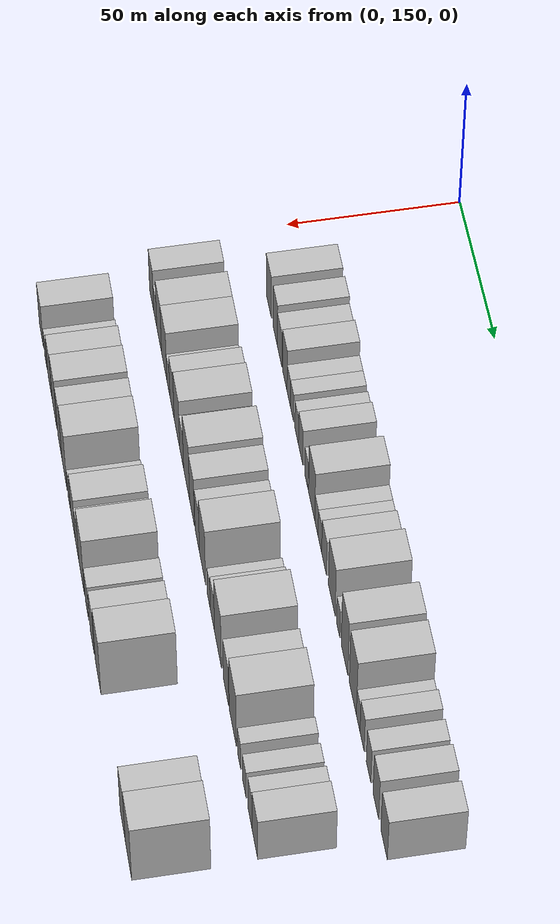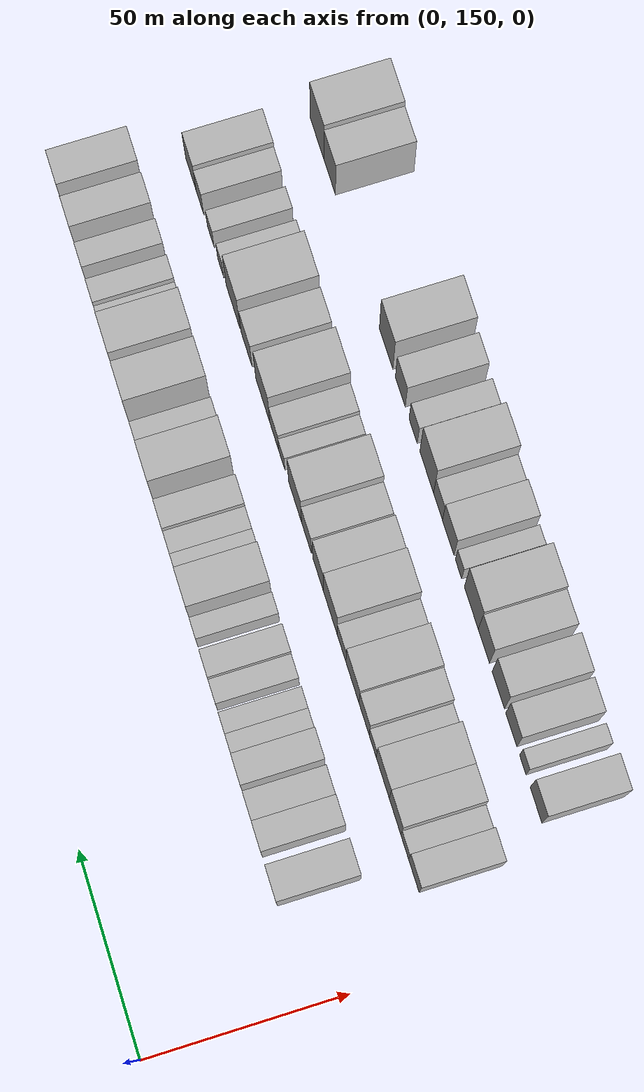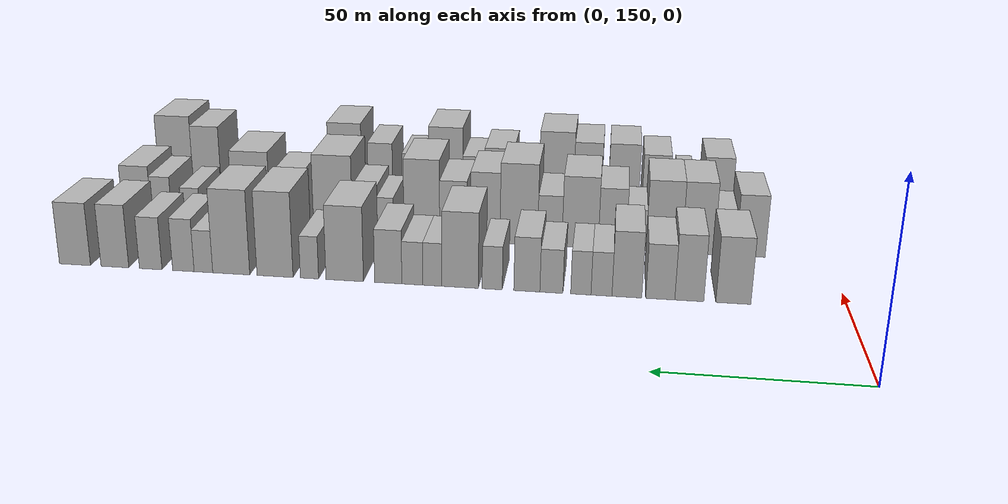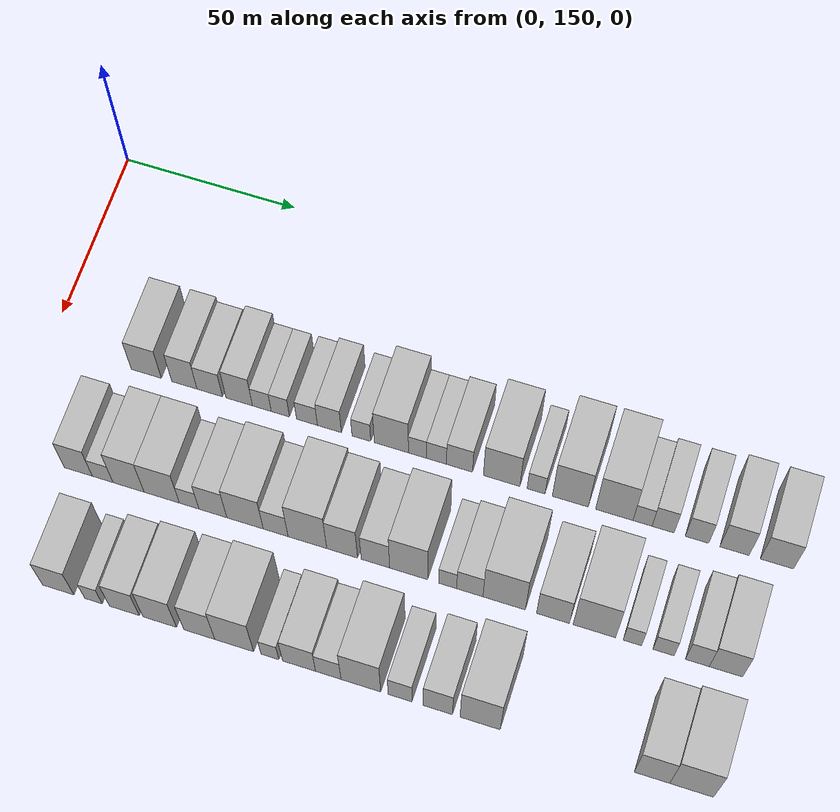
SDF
<sdf version="1.6">
 <world name="default">
  <model name="building_61">
   <static>1</static>
   <pose>50.0000 178.3178 0 0.000000 0.000000 0.000000</pose>
   <link name="link">
    <pose>0 0 9.00 0 0 0</pose>
    <collision name="collision"><geometry><box><size>20.0000 8.6861 18.0000</size></box></geometry></collision>
    <visual name="visual">
     <cast_shadows>0</cast_shadows>
     <geometry><box><size>20.0000 8.6861 18.0000</size></box></geometry>
     <material>
      <script>
       <uri>model://HANNAS_wall/materials/scripts</uri>
       <uri>model://HANNAS_wall/materials/textures</uri>
       <name>vrc/HANNAS_wall</name>
      </script>
     </material>
    </visual>
   </link>
  </model>
  <model name="building_62">
   <static>1</static>
   <pose>50.0000 189.3022 0 0.000000 0.000000 0.000000</pose>
   <link name="link">
    <pose>0 0 9.00 0 0 0</pose>
    <collision name="collision"><geometry><box><size>20.0000 7.2827 18.0000</size></box></geometry></collision>
    <visual name="visual">
     <cast_shadows>0</cast_shadows>
     <geometry><box><size>20.0000 7.2827 18.0000</size></box></geometry>
     <material>
      <script>
       <uri>model://HANNAS_wall/materials/scripts</uri>
       <uri>model://HANNAS_wall/materials/textures</uri>
       <name>vrc/HANNAS_wall</name>
      </script>
     </material>
    </visual>
   </link>
  </model>
  <model name="building_63">
   <static>1</static>
   <pose>50.0000 196.6041 0 0.000000 0.000000 0.000000</pose>
   <link name="link">
    <pose>0 0 7.50 0 0 0</pose>
    <collision name="collision"><geometry><box><size>20.0000 7.3212 15.0000</size></box></geometry></collision>
    <visual name="visual">
     <cast_shadows>0</cast_shadows>
     <geometry><box><size>20.0000 7.3212 15.0000</size></box></geometry>
     <material>
      <script>
       <uri>model://HANNAS_wall/materials/scripts</uri>
       <uri>model://HANNAS_wall/materials/textures</uri>
       <name>vrc/HANNAS_wall</name>
      </script>
     </material>
    </visual>
   </link>
  </model>
  <model name="building_64">
   <static>1</static>
   <pose>50.0000 205.0572 0 0.000000 0.000000 0.000000</pose>
   <link name="link">
    <pose>0 0 9.00 0 0 0</pose>
    <collision name="collision"><geometry><box><size>20.0000 7.5849 18.0000</size></box></geometry></collision>
    <visual name="visual">
     <cast_shadows>0</cast_shadows>
     <geometry><box><size>20.0000 7.5849 18.0000</size></box></geometry>
     <material>
      <script>
       <uri>model://HANNAS_wall/materials/scripts</uri>
       <uri>model://HANNAS_wall/materials/textures</uri>
       <name>vrc/HANNAS_wall</name>
      </script>
     </material>
    </visual>
   </link>
  </model>
  <model name="building_65">
   <static>1</static>
   <pose>50.0000 211.5247 0 0.000000 0.000000 0.000000</pose>
   <link name="link">
    <pose>0 0 6.00 0 0 0</pose>
    <collision name="collision"><geometry><box><size>20.0000 5.3502 12.0000</size></box></geometry></collision>
    <visual name="visual">
     <cast_shadows>0</cast_shadows>
     <geometry><box><size>20.0000 5.3502 12.0000</size></box></geometry>
     <material>
      <script>
       <uri>model://HANNAS_wall/materials/scripts</uri>
       <uri>model://HANNAS_wall/materials/textures</uri>
       <name>vrc/HANNAS_wall</name>
      </script>
     </material>
    </visual>
   </link>
  </model>
  <model name="building_66">
   <static>1</static>
   <pose>50.0000 216.8057 0 0.000000 0.000000 0.000000</pose>
   <link name="link">
    <pose>0 0 6.00 0 0 0</pose>
    <collision name="collision"><geometry><box><size>20.0000 5.2118 12.0000</size></box></geometry></collision>
    <visual name="visual">
     <cast_shadows>0</cast_shadows>
     <geometry><box><size>20.0000 5.2118 12.0000</size></box></geometry>
     <material>
      <script>
       <uri>model://HANNAS_wall/materials/scripts</uri>
       <uri>model://HANNAS_wall/materials/textures</uri>
       <name>vrc/HANNAS_wall</name>
      </script>
     </material>
    </visual>
   </link>
  </model>
  <model name="building_67">
   <static>1</static>
   <pose>50.0000 224.3799 0 0.000000 0.000000 0.000000</pose>
   <link name="link">
    <pose>0 0 6.00 0 0 0</pose>
    <collision name="collision"><geometry><box><size>20.0000 5.9366 12.0000</size></box></geometry></collision>
    <visual name="visual">
     <cast_shadows>0</cast_shadows>
     <geometry><box><size>20.0000 5.9366 12.0000</size></box></geometry>
     <material>
      <script>
       <uri>model://HANNAS_wall/materials/scripts</uri>
       <uri>model://HANNAS_wall/materials/textures</uri>
       <name>vrc/HANNAS_wall</name>
      </script>
     </material>
    </visual>
   </link>
  </model>
  <model name="building_68">
   <static>1</static>
   <pose>50.0000 230.7400 0 0.000000 0.000000 0.000000</pose>
   <link name="link">
    <pose>0 0 7.50 0 0 0</pose>
    <collision name="collision"><geometry><box><size>20.0000 6.7836 15.0000</size></box></geometry></collision>
    <visual name="visual">
     <cast_shadows>0</cast_shadows>
     <geometry><box><size>20.0000 6.7836 15.0000</size></box></geometry>
     <material>
      <script>
       <uri>model://HANNAS_wall/materials/scripts</uri>
       <uri>model://HANNAS_wall/materials/textures</uri>
       <name>vrc/HANNAS_wall</name>
      </script>
     </material>
    </visual>
   </link>
  </model>
  <model name="building_69">
   <static>1</static>
   <pose>50.0000 239.7752 0 0.000000 0.000000 0.000000</pose>
   <link name="link">
    <pose>0 0 6.00 0 0 0</pose>
    <collision name="collision"><geometry><box><size>20.0000 5.2867 12.0000</size></box></geometry></collision>
    <visual name="visual">
     <cast_shadows>0</cast_shadows>
     <geometry><box><size>20.0000 5.2867 12.0000</size></box></geometry>
     <material>
      <script>
       <uri>model://HANNAS_wall/materials/scripts</uri>
       <uri>model://HANNAS_wall/materials/textures</uri>
       <name>vrc/HANNAS_wall</name>
      </script>
     </material>
    </visual>
   </link>
  </model>
  <model name="building_70">
   <static>1</static>
   <pose>50.0000 248.2243 0 0.000000 0.000000 0.000000</pose>
   <link name="link">
    <pose>0 0 10.50 0 0 0</pose>
    <collision name="collision"><geometry><box><size>20.0000 9.6114 21.0000</size></box></geometry></collision>
    <visual name="visual">
     <cast_shadows>0</cast_shadows>
     <geometry><box><size>20.0000 9.6114 21.0000</size></box></geometry>
     <material>
      <script>
       <uri>model://HANNAS_wall/materials/scripts</uri>
       <uri>model://HANNAS_wall/materials/textures</uri>
       <name>vrc/HANNAS_wall</name>
      </script>
     </material>
    </visual>
   </link>
  </model>
  <model name="building_71">
   <static>1</static>
   <pose>50.0000 255.5449 0 0.000000 0.000000 0.000000</pose>
   <link name="link">
    <pose>0 0 6.00 0 0 0</pose>
    <collision name="collision"><geometry><box><size>20.0000 5.0299 12.0000</size></box></geometry></collision>
    <visual name="visual">
     <cast_shadows>0</cast_shadows>
     <geometry><box><size>20.0000 5.0299 12.0000</size></box></geometry>
     <material>
      <script>
       <uri>model://HANNAS_wall/materials/scripts</uri>
       <uri>model://HANNAS_wall/materials/textures</uri>
       <name>vrc/HANNAS_wall</name>
      </script>
     </material>
    </visual>
   </link>
  </model>
  <model name="building_72">
   <static>1</static>
   <pose>50.0000 260.8522 0 0.000000 0.000000 0.000000</pose>
   <link name="link">
    <pose>0 0 6.00 0 0 0</pose>
    <collision name="collision"><geometry><box><size>20.0000 5.5846 12.0000</size></box></geometry></collision>
    <visual name="visual">
     <cast_shadows>0</cast_shadows>
     <geometry><box><size>20.0000 5.5846 12.0000</size></box></geometry>
     <material>
      <script>
       <uri>model://HANNAS_wall/materials/scripts</uri>
       <uri>model://HANNAS_wall/materials/textures</uri>
       <name>vrc/HANNAS_wall</name>
      </script>
     </material>
    </visual>
   </link>
  </model>
  <model name="building_73">
   <static>1</static>
   <pose>50.0000 267.2864 0 0.000000 0.000000 0.000000</pose>
   <link name="link">
    <pose>0 0 7.50 0 0 0</pose>
    <collision name="collision"><geometry><box><size>20.0000 7.2839 15.0000</size></box></geometry></collision>
    <visual name="visual">
     <cast_shadows>0</cast_shadows>
     <geometry><box><size>20.0000 7.2839 15.0000</size></box></geometry>
     <material>
      <script>
       <uri>model://HANNAS_wall/materials/scripts</uri>
       <uri>model://HANNAS_wall/materials/textures</uri>
       <name>vrc/HANNAS_wall</name>
      </script>
     </material>
    </visual>
   </link>
  </model>
  <model name="building_74">
   <static>1</static>
   <pose>50.0000 278.9940 0 0.000000 0.000000 0.000000</pose>
   <link name="link">
    <pose>0 0 10.50 0 0 0</pose>
    <collision name="collision"><geometry><box><size>20.0000 10.1313 21.0000</size></box></geometry></collision>
    <visual name="visual">
     <cast_shadows>0</cast_shadows>
     <geometry><box><size>20.0000 10.1313 21.0000</size></box></geometry>
     <material>
      <script>
       <uri>model://HANNAS_wall/materials/scripts</uri>
       <uri>model://HANNAS_wall/materials/textures</uri>
       <name>vrc/HANNAS_wall</name>
      </script>
     </material>
    </visual>
   </link>
  </model>
  <model name="building_75">
   <static>1</static>
   <pose>50.0000 288.5395 0 0.000000 0.000000 0.000000</pose>
   <link name="link">
    <pose>0 0 6.00 0 0 0</pose>
    <collision name="collision"><geometry><box><size>20.0000 4.9599 12.0000</size></box></geometry></collision>
    <visual name="visual">
     <cast_shadows>0</cast_shadows>
     <geometry><box><size>20.0000 4.9599 12.0000</size></box></geometry>
     <material>
      <script>
       <uri>model://HANNAS_wall/materials/scripts</uri>
       <uri>model://HANNAS_wall/materials/textures</uri>
       <name>vrc/HANNAS_wall</name>
      </script>
     </material>
    </visual>
   </link>
  </model>
  <model name="building_76">
   <static>1</static>
   <pose>50.0000 297.9738 0 0.000000 0.000000 0.000000</pose>
   <link name="link">
    <pose>0 0 12.00 0 0 0</pose>
    <collision name="collision"><geometry><box><size>20.0000 9.9086 24.0000</size></box></geometry></collision>
    <visual name="visual">
     <cast_shadows>0</cast_shadows>
     <geometry><box><size>20.0000 9.9086 24.0000</size></box></geometry>
     <material>
      <script>
       <uri>model://HANNAS_wall/materials/scripts</uri>
       <uri>model://HANNAS_wall/materials/textures</uri>
       <name>vrc/HANNAS_wall</name>
      </script>
     </material>
    </visual>
   </link>
  </model>
  <model name="building_77">
   <static>1</static>
   <pose>50.0000 310.0574 0 0.000000 0.000000 0.000000</pose>
   <link name="link">
    <pose>0 0 12.00 0 0 0</pose>
    <collision name="collision"><geometry><box><size>20.0000 10.2586 24.0000</size></box></geometry></collision>
    <visual name="visual">
     <cast_shadows>0</cast_shadows>
     <geometry><box><size>20.0000 10.2586 24.0000</size></box></geometry>
     <material>
      <script>
       <uri>model://HANNAS_wall/materials/scripts</uri>
       <uri>model://HANNAS_wall/materials/textures</uri>
       <name>vrc/HANNAS_wall</name>
      </script>
     </material>
    </visual>
   </link>
  </model>
  <model name="building_78">
   <static>1</static>
   <pose>50.0000 317.7867 0 0.000000 0.000000 0.000000</pose>
   <link name="link">
    <pose>0 0 6.00 0 0 0</pose>
    <collision name="collision"><geometry><box><size>20.0000 5.2000 12.0000</size></box></geometry></collision>
    <visual name="visual">
     <cast_shadows>0</cast_shadows>
     <geometry><box><size>20.0000 5.2000 12.0000</size></box></geometry>
     <material>
      <script>
       <uri>model://HANNAS_wall/materials/scripts</uri>
       <uri>model://HANNAS_wall/materials/textures</uri>
       <name>vrc/HANNAS_wall</name>
      </script>
     </material>
    </visual>
   </link>
  </model>
  <model name="building_79">
   <static>1</static>
   <pose>50.0000 323.3931 0 0.000000 0.000000 0.000000</pose>
   <link name="link">
    <pose>0 0 7.50 0 0 0</pose>
    <collision name="collision"><geometry><box><size>20.0000 6.0129 15.0000</size></box></geometry></collision>
    <visual name="visual">
     <cast_shadows>0</cast_shadows>
     <geometry><box><size>20.0000 6.0129 15.0000</size></box></geometry>
     <material>
      <script>
       <uri>model://HANNAS_wall/materials/scripts</uri>
       <uri>model://HANNAS_wall/materials/textures</uri>
       <name>vrc/HANNAS_wall</name>
      </script>
     </material>
    </visual>
   </link>
  </model>
  <model name="building_80">
   <static>1</static>
   <pose>50.0000 332.5935 0 0.000000 0.000000 0.000000</pose>
   <link name="link">
    <pose>0 0 7.50 0 0 0</pose>
    <collision name="collision"><geometry><box><size>20.0000 6.3878 15.0000</size></box></geometry></collision>
    <visual name="visual">
     <cast_shadows>0</cast_shadows>
     <geometry><box><size>20.0000 6.3878 15.0000</size></box></geometry>
     <material>
      <script>
       <uri>model://HANNAS_wall/materials/scripts</uri>
       <uri>model://HANNAS_wall/materials/textures</uri>
       <name>vrc/HANNAS_wall</name>
      </script>
     </material>
    </visual>
   </link>
  </model>
  <model name="building_81">
   <static>1</static>
   <pose>50.0000 342.7441 0 0.000000 0.000000 0.000000</pose>
   <link name="link">
    <pose>0 0 9.00 0 0 0</pose>
    <collision name="collision"><geometry><box><size>20.0000 7.9135 18.0000</size></box></geometry></collision>
    <visual name="visual">
     <cast_shadows>0</cast_shadows>
     <geometry><box><size>20.0000 7.9135 18.0000</size></box></geometry>
     <material>
      <script>
       <uri>model://HANNAS_wall/materials/scripts</uri>
       <uri>model://HANNAS_wall/materials/textures</uri>
       <name>vrc/HANNAS_wall</name>
      </script>
     </material>
    </visual>
   </link>
  </model>
  <model name="building_82">
   <static>1</static>
   <pose>50.0000 354.1689 0 0.000000 0.000000 0.000000</pose>
   <link name="link">
    <pose>0 0 9.00 0 0 0</pose>
    <collision name="collision"><geometry><box><size>20.0000 8.9360 18.0000</size></box></geometry></collision>
    <visual name="visual">
     <cast_shadows>0</cast_shadows>
     <geometry><box><size>20.0000 8.9360 18.0000</size></box></geometry>
     <material>
      <script>
       <uri>model://HANNAS_wall/materials/scripts</uri>
       <uri>model://HANNAS_wall/materials/textures</uri>
       <name>vrc/HANNAS_wall</name>
      </script>
     </material>
    </visual>
   </link>
  </model>
  <model name="building_143">
   <static>1</static>
   <pose>82.0000 171.1417 0 0.000000 0.000000 0.000000</pose>
   <link name="link">
    <pose>0 0 9.00 0 0 0</pose>
    <collision name="collision"><geometry><box><size>20.0000 7.9502 18.0000</size></box></geometry></collision>
    <visual name="visual">
     <cast_shadows>0</cast_shadows>
     <geometry><box><size>20.0000 7.9502 18.0000</size></box></geometry>
     <material>
      <script>
       <uri>model://HANNAS_wall/materials/scripts</uri>
       <uri>model://HANNAS_wall/materials/textures</uri>
       <name>vrc/HANNAS_wall</name>
      </script>
     </material>
    </visual>
   </link>
  </model>
  <model name="building_144">
   <static>1</static>
   <pose>82.0000 178.0632 0 0.000000 0.000000 0.000000</pose>
   <link name="link">
    <pose>0 0 6.00 0 0 0</pose>
    <collision name="collision"><geometry><box><size>20.0000 5.8928 12.0000</size></box></geometry></collision>
    <visual name="visual">
     <cast_shadows>0</cast_shadows>
     <geometry><box><size>20.0000 5.8928 12.0000</size></box></geometry>
     <material>
      <script>
       <uri>model://HANNAS_wall/materials/scripts</uri>
       <uri>model://HANNAS_wall/materials/textures</uri>
       <name>vrc/HANNAS_wall</name>
      </script>
     </material>
    </visual>
   </link>
  </model>
  <model name="building_145">
   <static>1</static>
   <pose>82.0000 185.4321 0 0.000000 0.000000 0.000000</pose>
   <link name="link">
    <pose>0 0 10.50 0 0 0</pose>
    <collision name="collision"><geometry><box><size>20.0000 8.8452 21.0000</size></box></geometry></collision>
    <visual name="visual">
     <cast_shadows>0</cast_shadows>
     <geometry><box><size>20.0000 8.8452 21.0000</size></box></geometry>
     <material>
      <script>
       <uri>model://HANNAS_wall/materials/scripts</uri>
       <uri>model://HANNAS_wall/materials/textures</uri>
       <name>vrc/HANNAS_wall</name>
      </script>
     </material>
    </visual>
   </link>
  </model>
  <model name="building_146">
   <static>1</static>
   <pose>82.0000 194.8379 0 0.000000 0.000000 0.000000</pose>
   <link name="link">
    <pose>0 0 10.50 0 0 0</pose>
    <collision name="collision"><geometry><box><size>20.0000 9.9664 21.0000</size></box></geometry></collision>
    <visual name="visual">
     <cast_shadows>0</cast_shadows>
     <geometry><box><size>20.0000 9.9664 21.0000</size></box></geometry>
     <material>
      <script>
       <uri>model://HANNAS_wall/materials/scripts</uri>
       <uri>model://HANNAS_wall/materials/textures</uri>
       <name>vrc/HANNAS_wall</name>
      </script>
     </material>
    </visual>
   </link>
  </model>
  <model name="building_147">
   <static>1</static>
   <pose>82.0000 202.5668 0 0.000000 0.000000 0.000000</pose>
   <link name="link">
    <pose>0 0 6.00 0 0 0</pose>
    <collision name="collision"><geometry><box><size>20.0000 5.4913 12.0000</size></box></geometry></collision>
    <visual name="visual">
     <cast_shadows>0</cast_shadows>
     <geometry><box><size>20.0000 5.4913 12.0000</size></box></geometry>
     <material>
      <script>
       <uri>model://HANNAS_wall/materials/scripts</uri>
       <uri>model://HANNAS_wall/materials/textures</uri>
       <name>vrc/HANNAS_wall</name>
      </script>
     </material>
    </visual>
   </link>
  </model>
  <model name="building_148">
   <static>1</static>
   <pose>82.0000 209.2128 0 0.000000 0.000000 0.000000</pose>
   <link name="link">
    <pose>0 0 9.00 0 0 0</pose>
    <collision name="collision"><geometry><box><size>20.0000 7.8008 18.0000</size></box></geometry></collision>
    <visual name="visual">
     <cast_shadows>0</cast_shadows>
     <geometry><box><size>20.0000 7.8008 18.0000</size></box></geometry>
     <material>
      <script>
       <uri>model://HANNAS_wall/materials/scripts</uri>
       <uri>model://HANNAS_wall/materials/textures</uri>
       <name>vrc/HANNAS_wall</name>
      </script>
     </material>
    </visual>
   </link>
  </model>
  <model name="building_149">
   <static>1</static>
   <pose>82.0000 218.2011 0 0.000000 0.000000 0.000000</pose>
   <link name="link">
    <pose>0 0 10.50 0 0 0</pose>
    <collision name="collision"><geometry><box><size>20.0000 10.1757 21.0000</size></box></geometry></collision>
    <visual name="visual">
     <cast_shadows>0</cast_shadows>
     <geometry><box><size>20.0000 10.1757 21.0000</size></box></geometry>
     <material>
      <script>
       <uri>model://HANNAS_wall/materials/scripts</uri>
       <uri>model://HANNAS_wall/materials/textures</uri>
       <name>vrc/HANNAS_wall</name>
      </script>
     </material>
    </visual>
   </link>
  </model>
  <model name="building_150">
   <static>1</static>
   <pose>82.0000 226.7477 0 0.000000 0.000000 0.000000</pose>
   <link name="link">
    <pose>0 0 7.50 0 0 0</pose>
    <collision name="collision"><geometry><box><size>20.0000 6.9175 15.0000</size></box></geometry></collision>
    <visual name="visual">
     <cast_shadows>0</cast_shadows>
     <geometry><box><size>20.0000 6.9175 15.0000</size></box></geometry>
     <material>
      <script>
       <uri>model://HANNAS_wall/materials/scripts</uri>
       <uri>model://HANNAS_wall/materials/textures</uri>
       <name>vrc/HANNAS_wall</name>
      </script>
     </material>
    </visual>
   </link>
  </model>
  <model name="building_151">
   <static>1</static>
   <pose>82.0000 235.5703 0 0.000000 0.000000 0.000000</pose>
   <link name="link">
    <pose>0 0 12.00 0 0 0</pose>
    <collision name="collision"><geometry><box><size>20.0000 10.7277 24.0000</size></box></geometry></collision>
    <visual name="visual">
     <cast_shadows>0</cast_shadows>
     <geometry><box><size>20.0000 10.7277 24.0000</size></box></geometry>
     <material>
      <script>
       <uri>model://HANNAS_wall/materials/scripts</uri>
       <uri>model://HANNAS_wall/materials/textures</uri>
       <name>vrc/HANNAS_wall</name>
      </script>
     </material>
    </visual>
   </link>
  </model>
  <model name="building_152">
   <static>1</static>
   <pose>82.0000 245.1869 0 0.000000 0.000000 0.000000</pose>
   <link name="link">
    <pose>0 0 10.50 0 0 0</pose>
    <collision name="collision"><geometry><box><size>20.0000 8.5054 21.0000</size></box></geometry></collision>
    <visual name="visual">
     <cast_shadows>0</cast_shadows>
     <geometry><box><size>20.0000 8.5054 21.0000</size></box></geometry>
     <material>
      <script>
       <uri>model://HANNAS_wall/materials/scripts</uri>
       <uri>model://HANNAS_wall/materials/textures</uri>
       <name>vrc/HANNAS_wall</name>
      </script>
     </material>
    </visual>
   </link>
  </model>
  <model name="building_153">
   <static>1</static>
   <pose>82.0000 254.3557 0 0.000000 0.000000 0.000000</pose>
   <link name="link">
    <pose>0 0 9.00 0 0 0</pose>
    <collision name="collision"><geometry><box><size>20.0000 7.8323 18.0000</size></box></geometry></collision>
    <visual name="visual">
     <cast_shadows>0</cast_shadows>
     <geometry><box><size>20.0000 7.8323 18.0000</size></box></geometry>
     <material>
      <script>
       <uri>model://HANNAS_wall/materials/scripts</uri>
       <uri>model://HANNAS_wall/materials/textures</uri>
       <name>vrc/HANNAS_wall</name>
      </script>
     </material>
    </visual>
   </link>
  </model>
  <model name="building_154">
   <static>1</static>
   <pose>82.0000 263.4616 0 0.000000 0.000000 0.000000</pose>
   <link name="link">
    <pose>0 0 12.00 0 0 0</pose>
    <collision name="collision"><geometry><box><size>20.0000 10.3793 24.0000</size></box></geometry></collision>
    <visual name="visual">
     <cast_shadows>0</cast_shadows>
     <geometry><box><size>20.0000 10.3793 24.0000</size></box></geometry>
     <material>
      <script>
       <uri>model://HANNAS_wall/materials/scripts</uri>
       <uri>model://HANNAS_wall/materials/textures</uri>
       <name>vrc/HANNAS_wall</name>
      </script>
     </material>
    </visual>
   </link>
  </model>
  <model name="building_155">
   <static>1</static>
   <pose>82.0000 274.1124 0 0.000000 0.000000 0.000000</pose>
   <link name="link">
    <pose>0 0 6.00 0 0 0</pose>
    <collision name="collision"><geometry><box><size>20.0000 4.9224 12.0000</size></box></geometry></collision>
    <visual name="visual">
     <cast_shadows>0</cast_shadows>
     <geometry><box><size>20.0000 4.9224 12.0000</size></box></geometry>
     <material>
      <script>
       <uri>model://HANNAS_wall/materials/scripts</uri>
       <uri>model://HANNAS_wall/materials/textures</uri>
       <name>vrc/HANNAS_wall</name>
      </script>
     </material>
    </visual>
   </link>
  </model>
  <model name="building_156">
   <static>1</static>
   <pose>82.0000 280.1551 0 0.000000 0.000000 0.000000</pose>
   <link name="link">
    <pose>0 0 7.50 0 0 0</pose>
    <collision name="collision"><geometry><box><size>20.0000 7.1630 15.0000</size></box></geometry></collision>
    <visual name="visual">
     <cast_shadows>0</cast_shadows>
     <geometry><box><size>20.0000 7.1630 15.0000</size></box></geometry>
     <material>
      <script>
       <uri>model://HANNAS_wall/materials/scripts</uri>
       <uri>model://HANNAS_wall/materials/textures</uri>
       <name>vrc/HANNAS_wall</name>
      </script>
     </material>
    </visual>
   </link>
  </model>
  <model name="building_157">
   <static>1</static>
   <pose>82.0000 289.4738 0 0.000000 0.000000 0.000000</pose>
   <link name="link">
    <pose>0 0 12.00 0 0 0</pose>
    <collision name="collision"><geometry><box><size>20.0000 11.4742 24.0000</size></box></geometry></collision>
    <visual name="visual">
     <cast_shadows>0</cast_shadows>
     <geometry><box><size>20.0000 11.4742 24.0000</size></box></geometry>
     <material>
      <script>
       <uri>model://HANNAS_wall/materials/scripts</uri>
       <uri>model://HANNAS_wall/materials/textures</uri>
       <name>vrc/HANNAS_wall</name>
      </script>
     </material>
    </visual>
   </link>
  </model>
  <model name="building_158">
   <static>1</static>
   <pose>82.0000 302.6432 0 0.000000 0.000000 0.000000</pose>
   <link name="link">
    <pose>0 0 9.00 0 0 0</pose>
    <collision name="collision"><geometry><box><size>20.0000 8.8645 18.0000</size></box></geometry></collision>
    <visual name="visual">
     <cast_shadows>0</cast_shadows>
     <geometry><box><size>20.0000 8.8645 18.0000</size></box></geometry>
     <material>
      <script>
       <uri>model://HANNAS_wall/materials/scripts</uri>
       <uri>model://HANNAS_wall/materials/textures</uri>
       <name>vrc/HANNAS_wall</name>
      </script>
     </material>
    </visual>
   </link>
  </model>
  <model name="building_159">
   <static>1</static>
   <pose>82.0000 313.7762 0 0.000000 0.000000 0.000000</pose>
   <link name="link">
    <pose>0 0 12.00 0 0 0</pose>
    <collision name="collision"><geometry><box><size>20.0000 11.4015 24.0000</size></box></geometry></collision>
    <visual name="visual">
     <cast_shadows>0</cast_shadows>
     <geometry><box><size>20.0000 11.4015 24.0000</size></box></geometry>
     <material>
      <script>
       <uri>model://HANNAS_wall/materials/scripts</uri>
       <uri>model://HANNAS_wall/materials/textures</uri>
       <name>vrc/HANNAS_wall</name>
      </script>
     </material>
    </visual>
   </link>
  </model>
  <model name="building_160">
   <static>1</static>
   <pose>82.0000 323.9457 0 0.000000 0.000000 0.000000</pose>
   <link name="link">
    <pose>0 0 6.00 0 0 0</pose>
    <collision name="collision"><geometry><box><size>20.0000 4.9376 12.0000</size></box></geometry></collision>
    <visual name="visual">
     <cast_shadows>0</cast_shadows>
     <geometry><box><size>20.0000 4.9376 12.0000</size></box></geometry>
     <material>
      <script>
       <uri>model://HANNAS_wall/materials/scripts</uri>
       <uri>model://HANNAS_wall/materials/textures</uri>
       <name>vrc/HANNAS_wall</name>
      </script>
     </material>
    </visual>
   </link>
  </model>
  <model name="building_161">
   <static>1</static>
   <pose>82.0000 332.2386 0 0.000000 0.000000 0.000000</pose>
   <link name="link">
    <pose>0 0 6.00 0 0 0</pose>
    <collision name="collision"><geometry><box><size>20.0000 5.6482 12.0000</size></box></geometry></collision>
    <visual name="visual">
     <cast_shadows>0</cast_shadows>
     <geometry><box><size>20.0000 5.6482 12.0000</size></box></geometry>
     <material>
      <script>
       <uri>model://HANNAS_wall/materials/scripts</uri>
       <uri>model://HANNAS_wall/materials/textures</uri>
       <name>vrc/HANNAS_wall</name>
      </script>
     </material>
    </visual>
   </link>
  </model>
  <model name="building_162">
   <static>1</static>
   <pose>82.0000 341.2169 0 0.000000 0.000000 0.000000</pose>
   <link name="link">
    <pose>0 0 7.50 0 0 0</pose>
    <collision name="collision"><geometry><box><size>20.0000 6.3083 15.0000</size></box></geometry></collision>
    <visual name="visual">
     <cast_shadows>0</cast_shadows>
     <geometry><box><size>20.0000 6.3083 15.0000</size></box></geometry>
     <material>
      <script>
       <uri>model://HANNAS_wall/materials/scripts</uri>
       <uri>model://HANNAS_wall/materials/textures</uri>
       <name>vrc/HANNAS_wall</name>
      </script>
     </material>
    </visual>
   </link>
  </model>
  <model name="building_163">
   <static>1</static>
   <pose>82.0000 348.7655 0 0.000000 0.000000 0.000000</pose>
   <link name="link">
    <pose>0 0 9.00 0 0 0</pose>
    <collision name="collision"><geometry><box><size>20.0000 8.7890 18.0000</size></box></geometry></collision>
    <visual name="visual">
     <cast_shadows>0</cast_shadows>
     <geometry><box><size>20.0000 8.7890 18.0000</size></box></geometry>
     <material>
      <script>
       <uri>model://HANNAS_wall/materials/scripts</uri>
       <uri>model://HANNAS_wall/materials/textures</uri>
       <name>vrc/HANNAS_wall</name>
      </script>
     </material>
    </visual>
   </link>
  </model>
  <model name="building_220">
   <static>1</static>
   <pose>114.0000 178.2018 0 0.000000 0.000000 0.000000</pose>
   <link name="link">
    <pose>0 0 9.00 0 0 0</pose>
    <collision name="collision"><geometry><box><size>20.0000 8.7298 18.0000</size></box></geometry></collision>
    <visual name="visual">
     <cast_shadows>0</cast_shadows>
     <geometry><box><size>20.0000 8.7298 18.0000</size></box></geometry>
     <material>
      <script>
       <uri>model://HANNAS_wall/materials/scripts</uri>
       <uri>model://HANNAS_wall/materials/textures</uri>
       <name>vrc/HANNAS_wall</name>
      </script>
     </material>
    </visual>
   </link>
  </model>
  <model name="building_221">
   <static>1</static>
   <pose>114.0000 188.0042 0 0.000000 0.000000 0.000000</pose>
   <link name="link">
    <pose>0 0 6.00 0 0 0</pose>
    <collision name="collision"><geometry><box><size>20.0000 4.8750 12.0000</size></box></geometry></collision>
    <visual name="visual">
     <cast_shadows>0</cast_shadows>
     <geometry><box><size>20.0000 4.8750 12.0000</size></box></geometry>
     <material>
      <script>
       <uri>model://HANNAS_wall/materials/scripts</uri>
       <uri>model://HANNAS_wall/materials/textures</uri>
       <name>vrc/HANNAS_wall</name>
      </script>
     </material>
    </visual>
   </link>
  </model>
  <model name="building_222">
   <static>1</static>
   <pose>114.0000 196.5852 0 0.000000 0.000000 0.000000</pose>
   <link name="link">
    <pose>0 0 9.00 0 0 0</pose>
    <collision name="collision"><geometry><box><size>20.0000 8.2869 18.0000</size></box></geometry></collision>
    <visual name="visual">
     <cast_shadows>0</cast_shadows>
     <geometry><box><size>20.0000 8.2869 18.0000</size></box></geometry>
     <material>
      <script>
       <uri>model://HANNAS_wall/materials/scripts</uri>
       <uri>model://HANNAS_wall/materials/textures</uri>
       <name>vrc/HANNAS_wall</name>
      </script>
     </material>
    </visual>
   </link>
  </model>
  <model name="building_223">
   <static>1</static>
   <pose>114.0000 206.3469 0 0.000000 0.000000 0.000000</pose>
   <link name="link">
    <pose>0 0 10.50 0 0 0</pose>
    <collision name="collision"><geometry><box><size>20.0000 9.2365 21.0000</size></box></geometry></collision>
    <visual name="visual">
     <cast_shadows>0</cast_shadows>
     <geometry><box><size>20.0000 9.2365 21.0000</size></box></geometry>
     <material>
      <script>
       <uri>model://HANNAS_wall/materials/scripts</uri>
       <uri>model://HANNAS_wall/materials/textures</uri>
       <name>vrc/HANNAS_wall</name>
      </script>
     </material>
    </visual>
   </link>
  </model>
  <model name="building_224">
   <static>1</static>
   <pose>114.0000 217.2187 0 0.000000 0.000000 0.000000</pose>
   <link name="link">
    <pose>0 0 10.50 0 0 0</pose>
    <collision name="collision"><geometry><box><size>20.0000 8.5071 21.0000</size></box></geometry></collision>
    <visual name="visual">
     <cast_shadows>0</cast_shadows>
     <geometry><box><size>20.0000 8.5071 21.0000</size></box></geometry>
     <material>
      <script>
       <uri>model://HANNAS_wall/materials/scripts</uri>
       <uri>model://HANNAS_wall/materials/textures</uri>
       <name>vrc/HANNAS_wall</name>
      </script>
     </material>
    </visual>
   </link>
  </model>
  <model name="building_225">
   <static>1</static>
   <pose>114.0000 226.7686 0 0.000000 0.000000 0.000000</pose>
   <link name="link">
    <pose>0 0 12.00 0 0 0</pose>
    <collision name="collision"><geometry><box><size>20.0000 10.5927 24.0000</size></box></geometry></collision>
    <visual name="visual">
     <cast_shadows>0</cast_shadows>
     <geometry><box><size>20.0000 10.5927 24.0000</size></box></geometry>
     <material>
      <script>
       <uri>model://HANNAS_wall/materials/scripts</uri>
       <uri>model://HANNAS_wall/materials/textures</uri>
       <name>vrc/HANNAS_wall</name>
      </script>
     </material>
    </visual>
   </link>
  </model>
  <model name="building_226">
   <static>1</static>
   <pose>114.0000 236.4979 0 0.000000 0.000000 0.000000</pose>
   <link name="link">
    <pose>0 0 6.00 0 0 0</pose>
    <collision name="collision"><geometry><box><size>20.0000 4.8659 12.0000</size></box></geometry></collision>
    <visual name="visual">
     <cast_shadows>0</cast_shadows>
     <geometry><box><size>20.0000 4.8659 12.0000</size></box></geometry>
     <material>
      <script>
       <uri>model://HANNAS_wall/materials/scripts</uri>
       <uri>model://HANNAS_wall/materials/textures</uri>
       <name>vrc/HANNAS_wall</name>
      </script>
     </material>
    </visual>
   </link>
  </model>
  <model name="building_227">
   <static>1</static>
   <pose>114.0000 244.3959 0 0.000000 0.000000 0.000000</pose>
   <link name="link">
    <pose>0 0 9.00 0 0 0</pose>
    <collision name="collision"><geometry><box><size>20.0000 8.9301 18.0000</size></box></geometry></collision>
    <visual name="visual">
     <cast_shadows>0</cast_shadows>
     <geometry><box><size>20.0000 8.9301 18.0000</size></box></geometry>
     <material>
      <script>
       <uri>model://HANNAS_wall/materials/scripts</uri>
       <uri>model://HANNAS_wall/materials/textures</uri>
       <name>vrc/HANNAS_wall</name>
      </script>
     </material>
    </visual>
   </link>
  </model>
  <model name="building_228">
   <static>1</static>
   <pose>114.0000 252.3010 0 0.000000 0.000000 0.000000</pose>
   <link name="link">
    <pose>0 0 7.50 0 0 0</pose>
    <collision name="collision"><geometry><box><size>20.0000 6.8801 15.0000</size></box></geometry></collision>
    <visual name="visual">
     <cast_shadows>0</cast_shadows>
     <geometry><box><size>20.0000 6.8801 15.0000</size></box></geometry>
     <material>
      <script>
       <uri>model://HANNAS_wall/materials/scripts</uri>
       <uri>model://HANNAS_wall/materials/textures</uri>
       <name>vrc/HANNAS_wall</name>
      </script>
     </material>
    </visual>
   </link>
  </model>
  <model name="building_229">
   <static>1</static>
   <pose>114.0000 261.0674 0 0.000000 0.000000 0.000000</pose>
   <link name="link">
    <pose>0 0 12.00 0 0 0</pose>
    <collision name="collision"><geometry><box><size>20.0000 10.6526 24.0000</size></box></geometry></collision>
    <visual name="visual">
     <cast_shadows>0</cast_shadows>
     <geometry><box><size>20.0000 10.6526 24.0000</size></box></geometry>
     <material>
      <script>
       <uri>model://HANNAS_wall/materials/scripts</uri>
       <uri>model://HANNAS_wall/materials/textures</uri>
       <name>vrc/HANNAS_wall</name>
      </script>
     </material>
    </visual>
   </link>
  </model>
  <model name="building_230">
   <static>1</static>
   <pose>114.0000 271.5822 0 0.000000 0.000000 0.000000</pose>
   <link name="link">
    <pose>0 0 7.50 0 0 0</pose>
    <collision name="collision"><geometry><box><size>20.0000 6.3770 15.0000</size></box></geometry></collision>
    <visual name="visual">
     <cast_shadows>0</cast_shadows>
     <geometry><box><size>20.0000 6.3770 15.0000</size></box></geometry>
     <material>
      <script>
       <uri>model://HANNAS_wall/materials/scripts</uri>
       <uri>model://HANNAS_wall/materials/textures</uri>
       <name>vrc/HANNAS_wall</name>
      </script>
     </material>
    </visual>
   </link>
  </model>
  <model name="building_231">
   <static>1</static>
   <pose>114.0000 281.6592 0 0.000000 0.000000 0.000000</pose>
   <link name="link">
    <pose>0 0 9.00 0 0 0</pose>
    <collision name="collision"><geometry><box><size>20.0000 7.7772 18.0000</size></box></geometry></collision>
    <visual name="visual">
     <cast_shadows>0</cast_shadows>
     <geometry><box><size>20.0000 7.7772 18.0000</size></box></geometry>
     <material>
      <script>
       <uri>model://HANNAS_wall/materials/scripts</uri>
       <uri>model://HANNAS_wall/materials/textures</uri>
       <name>vrc/HANNAS_wall</name>
      </script>
     </material>
    </visual>
   </link>
  </model>
  <model name="building_232">
   <static>1</static>
   <pose>114.0000 292.8717 0 0.000000 0.000000 0.000000</pose>
   <link name="link">
    <pose>0 0 12.00 0 0 0</pose>
    <collision name="collision"><geometry><box><size>20.0000 10.6478 24.0000</size></box></geometry></collision>
    <visual name="visual">
     <cast_shadows>0</cast_shadows>
     <geometry><box><size>20.0000 10.6478 24.0000</size></box></geometry>
     <material>
      <script>
       <uri>model://HANNAS_wall/materials/scripts</uri>
       <uri>model://HANNAS_wall/materials/textures</uri>
       <name>vrc/HANNAS_wall</name>
      </script>
     </material>
    </visual>
   </link>
  </model>
  <model name="building_233">
   <static>1</static>
   <pose>114.0000 337.9849 0 0.000000 0.000000 0.000000</pose>
   <link name="link">
    <pose>0 0 10.50 0 0 0</pose>
    <collision name="collision"><geometry><box><size>20.0000 9.1928 21.0000</size></box></geometry></collision>
    <visual name="visual">
     <cast_shadows>0</cast_shadows>
     <geometry><box><size>20.0000 9.1928 21.0000</size></box></geometry>
     <material>
      <script>
       <uri>model://HANNAS_wall/materials/scripts</uri>
       <uri>model://HANNAS_wall/materials/textures</uri>
       <name>vrc/HANNAS_wall</name>
      </script>
     </material>
    </visual>
   </link>
  </model>
  <model name="building_234">
   <static>1</static>
   <pose>114.0000 348.2434 0 0.000000 0.000000 0.000000</pose>
   <link name="link">
    <pose>0 0 12.00 0 0 0</pose>
    <collision name="collision"><geometry><box><size>20.0000 11.3243 24.0000</size></box></geometry></collision>
    <visual name="visual">
     <cast_shadows>0</cast_shadows>
     <geometry><box><size>20.0000 11.3243 24.0000</size></box></geometry>
     <material>
      <script>
       <uri>model://HANNAS_wall/materials/scripts</uri>
       <uri>model://HANNAS_wall/materials/textures</uri>
       <name>vrc/HANNAS_wall</name>
      </script>
     </material>
    </visual>
   </link>
  </model>
 </world>
</sdf>
